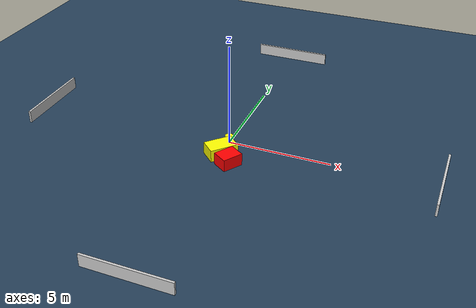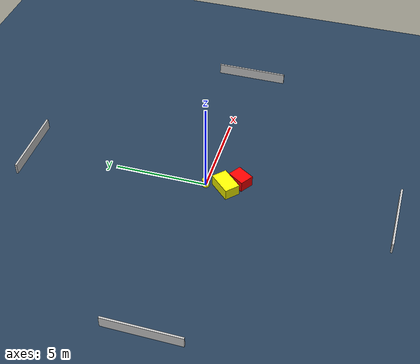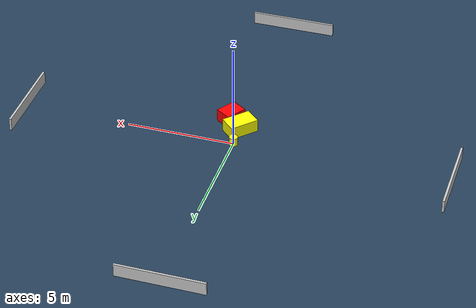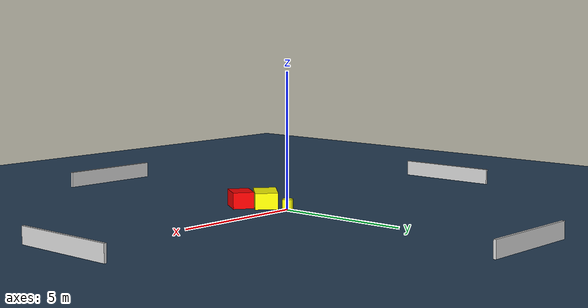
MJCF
<?xml version="1.0" ?>
<mujoco model="generated_environment">
  <option timestep="0.01" integrator="RK4" cone="elliptic"/>
  <default>
    <geom density="1"/>
  </default>
  <asset>
    <texture builtin="gradient" height="3072" name="skybox" rgb1="0.3 0.5 0.7" rgb2="0 0 0" type="skybox" width="512"/>
    <texture builtin="checker" height="300" name="groundplane" rgb1="0.2 0.3 0.4" rgb2="0.1 0.2 0.3" type="2d" width="300"/>
    <material name="groundplane" reflectance="0.2" texrepeat="5 5" texture="groundplane"/>
  </asset>
  <worldbody>
    <light dir="0 0 -1" directional="true" pos="0 0 1.5"/>
    <geom condim="3" friction="0.5 0.005 0.001" material="groundplane" name="floor" pos="0 0 0" size="0 0 0.05" type="plane"/>
    <body name="walls">
      <geom name="wall_1" condim="4" pos="-10.0 0.0 0.3" rgba="0.800000011920929 0.800000011920929 0.800000011920929 1.0" size="0.05 2.0 0.3" type="box"/>
      <geom name="wall_2" condim="4" pos="10.0 0.0 0.3" rgba="0.800000011920929 0.800000011920929 0.800000011920929 1.0" size="0.05 2.0 0.3" type="box"/>
      <geom name="wall_3" condim="4" pos="0.0 -10.0 0.3" rgba="0.800000011920929 0.800000011920929 0.800000011920929 1.0" size="2.0 0.05 0.3" type="box"/>
      <geom name="wall_4" condim="4" pos="0.0 10.0 0.3" rgba="0.800000011920929 0.800000011920929 0.800000011920929 1.0" size="2.0 0.05 0.3" type="box"/>
    </body>
    <body name="robot">
      <joint name="joint_x" type="slide" pos="0 0 0" axis="1 0 0"/>
      <joint name="joint_y" type="slide" pos="0 0 0" axis="0 1 0"/>
      <geom name="robot" type="cylinder" pos="0.0 0.0 0.2" size="0.2 0.2 0.0" mass="5.0" friction="1.0 0.005 0.0001" condim="4" rgba="1.0 1.0 0.0 1.0"/>
    </body>
    <body name="obstacle_1_movable">
      <geom name="obstacle_1_movable" condim="4" pos="0.014549723750175995 -1.0795059133378184 0.3" euler="0 0 46.66978248675274" friction="0.0 0.005 0.001" rgba="1.0 1.0 0.0 1.0" size="0.6845783925480129 0.4216843978037056 0.3" type="box" mass="0.1"/>
      <joint type="free"/>
    </body>
    <body name="obstacle_2_static">
      <geom name="obstacle_2_static" condim="4" pos="0.6475587757032041 -1.724781346125881 0.3" euler="0 0 236.9036179152561" friction="0.0 0.005 0.001" rgba="1.0 0.0 0.0 1.0" size="0.49680693737531567 0.3891021347597422 0.3" type="box"/>
    </body>
  </worldbody>
  <actuator>
    <motor name="actuator_x" joint="joint_x" gear="1" ctrlrange="-1 1"/>
    <motor name="actuator_y" joint="joint_y" gear="1" ctrlrange="-1 1"/>
  </actuator>
</mujoco>
